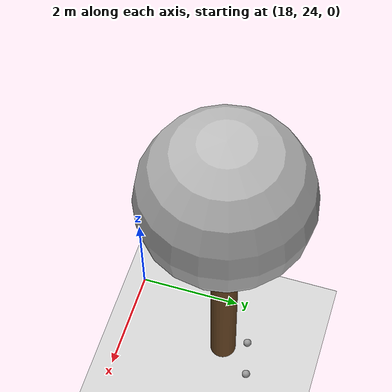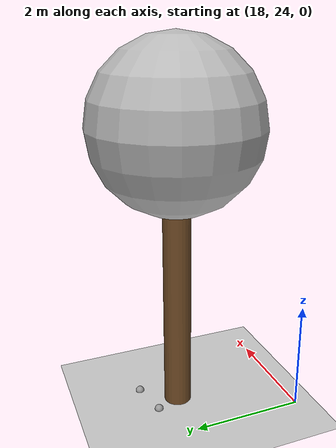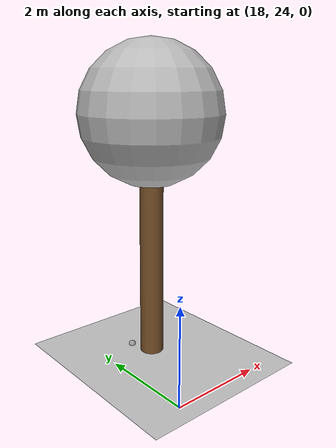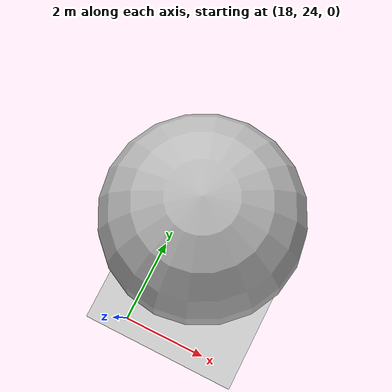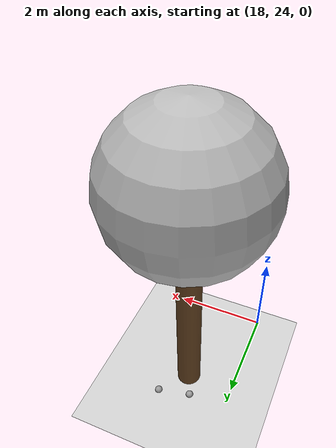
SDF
<sdf version="1.7">
 <world name="default">
  <model name="ground_plane">
   <static>1</static>
   <link name="link">
    <collision name="collision">
     <geometry><plane><normal>0 0 1</normal><size>100 100</size></plane></geometry>
     <surface>
      <contact><collide_bitmask>65535</collide_bitmask></contact>
      <friction><ode><mu>100</mu><mu2>50</mu2></ode></friction>
     </surface>
    </collision>
    <visual name="visual">
     <cast_shadows>0</cast_shadows>
     <geometry><plane><normal>0 0 1</normal><size>100 100</size></plane></geometry>
     <material>
      <script><uri>file://media/materials/scripts/gazebo.material</uri><name>Gazebo/Grey</name></script>
     </material>
    </visual>
   </link>
  </model>
  <model name="tree_simple_35">
   <static>1</static>
   <link name="link">
    <pose>0 0 0.1 0 -0 0</pose>
    <inertial>
     <mass>666</mass>
     <inertia>
      <ixx>0.0861167</ixx>
      <ixy>0</ixy>
      <ixz>0</ixz>
      <iyy>0.0861167</iyy>
      <iyz>0</iyz>
      <izz>0.0861167</izz>
     </inertia>
    </inertial>
    <collision name="collision_trunk">
     <pose>0 0 2 0 -0 0</pose>
     <geometry><cylinder><radius>0.25</radius><length>4</length></cylinder></geometry>
     <surface>
      <contact>
       <poissons_ratio>0.347</poissons_ratio>
       <elastic_modulus>8.8e+09</elastic_modulus>
       <ode><kp>100000</kp><kd>100</kd><max_vel>100</max_vel><min_depth>0.001</min_depth></ode>
      </contact>
      <friction>
       <torsional>
        <coefficient>1</coefficient>
        <use_patch_radius>0</use_patch_radius>
        <surface_radius>0.01</surface_radius>
       </torsional>
      </friction>
     </surface>
    </collision>
    <collision name="collision_treetop">
     <pose>0 0 5.2 0 -0 0</pose>
     <geometry><sphere><radius>1.5</radius></sphere></geometry>
     <surface>
      <contact>
       <poissons_ratio>0.347</poissons_ratio>
       <elastic_modulus>8.8e+09</elastic_modulus>
       <ode><kp>100000</kp><kd>100</kd><max_vel>100</max_vel><min_depth>0.001</min_depth></ode>
      </contact>
      <friction>
       <torsional>
        <coefficient>1</coefficient>
        <use_patch_radius>0</use_patch_radius>
        <surface_radius>0.01</surface_radius>
       </torsional>
      </friction>
     </surface>
    </collision>
    <visual name="trunk">
     <pose>0 0 2 0 -0 0</pose>
     <geometry><cylinder><radius>0.25</radius><length>4</length></cylinder></geometry>
     <material>
      <script>
       <uri>model://tree_simple/scripts</uri>
       <uri>model://tree_simple/materials/textures</uri>
       <name>TreeSimple/Trunk</name>
      </script>
     </material>
    </visual>
    <visual name="treetop">
     <pose>0 0 5.2 0 -0 0</pose>
     <geometry><sphere><radius>1.5</radius></sphere></geometry>
     <material>
      <script>
       <uri>model://tree_simple/scripts</uri>
       <uri>model://tree_simple/materials/textures</uri>
       <name>TreeSimple/Treetop</name>
      </script>
     </material>
    </visual>
   </link>
   <pose>19 26 -0.1 0 -0 0</pose>
  </model>
  <model name="seed_black_27">
   <link name="link">
    <inertial>
     <mass>1</mass>
     <inertia><ixx>0.1</ixx><ixy>0</ixy><ixz>0</ixz><iyy>0.1</iyy><iyz>0</iyz><izz>0.1</izz></inertia>
    </inertial>
    <visual name="visual">
     <geometry><sphere><radius>0.08</radius></sphere></geometry>
     <material>
      <script><name>Gazebo/Grey</name><uri>file://media/materials/scripts/gazebo.material</uri></script>
      <shader type="pixel"><normal_map>__default__</normal_map></shader>
      <ambient>0 0 0 1</ambient>
      <diffuse>0.7 0.7 0.7 1</diffuse>
      <specular>0.01 0.01 0.01 1</specular>
      <emissive>0 0 0 1</emissive>
     </material>
    </visual>
    <collision name="collision">
     <geometry><sphere><radius>0.0005</radius></sphere></geometry>
     <surface>
      <friction>
       <ode><mu>1</mu><mu2>1</mu2><fdir1>0 0 0</fdir1><slip1>0</slip1><slip2>0</slip2></ode>
       <torsional>
        <coefficient>1</coefficient>
        <patch_radius>0</patch_radius>
        <surface_radius>0</surface_radius>
        <use_patch_radius>1</use_patch_radius>
        <ode><slip>0</slip></ode>
       </torsional>
      </friction>
      <bounce><restitution_coefficient>0</restitution_coefficient><threshold>1e+06</threshold></bounce>
      <contact>
       <collide_without_contact>0</collide_without_contact>
       <collide_without_contact_bitmask>1</collide_without_contact_bitmask>
       <collide_bitmask>1</collide_bitmask>
       <ode>
        <soft_cfm>0</soft_cfm>
        <soft_erp>0.2</soft_erp>
        <kp>1e+13</kp>
        <kd>1</kd>
        <max_vel>0.01</max_vel>
        <min_depth>0</min_depth>
       </ode>
       <bullet>
        <split_impulse>1</split_impulse>
        <split_impulse_penetration_threshold>-0.01</split_impulse_penetration_threshold>
        <soft_cfm>0</soft_cfm>
        <soft_erp>0.2</soft_erp>
        <kp>1e+13</kp>
        <kd>1</kd>
       </bullet>
      </contact>
     </surface>
    </collision>
   </link>
   <static>0</static>
   <pose>18.7976 26.4507 0.0005 0 -0 0</pose>
  </model>
  <model name="seed_black_30">
   <link name="link">
    <inertial>
     <mass>1</mass>
     <inertia><ixx>0.1</ixx><ixy>0</ixy><ixz>0</ixz><iyy>0.1</iyy><iyz>0</iyz><izz>0.1</izz></inertia>
    </inertial>
    <visual name="visual">
     <geometry><sphere><radius>0.08</radius></sphere></geometry>
     <material>
      <script><name>Gazebo/Grey</name><uri>file://media/materials/scripts/gazebo.material</uri></script>
      <shader type="pixel"><normal_map>__default__</normal_map></shader>
      <ambient>0 0 0 1</ambient>
      <diffuse>0.7 0.7 0.7 1</diffuse>
      <specular>0.01 0.01 0.01 1</specular>
      <emissive>0 0 0 1</emissive>
     </material>
    </visual>
    <collision name="collision">
     <geometry><sphere><radius>0.0005</radius></sphere></geometry>
     <surface>
      <friction>
       <ode><mu>1</mu><mu2>1</mu2><fdir1>0 0 0</fdir1><slip1>0</slip1><slip2>0</slip2></ode>
       <torsional>
        <coefficient>1</coefficient>
        <patch_radius>0</patch_radius>
        <surface_radius>0</surface_radius>
        <use_patch_radius>1</use_patch_radius>
        <ode><slip>0</slip></ode>
       </torsional>
      </friction>
      <bounce><restitution_coefficient>0</restitution_coefficient><threshold>1e+06</threshold></bounce>
      <contact>
       <collide_without_contact>0</collide_without_contact>
       <collide_without_contact_bitmask>1</collide_without_contact_bitmask>
       <collide_bitmask>1</collide_bitmask>
       <ode>
        <soft_cfm>0</soft_cfm>
        <soft_erp>0.2</soft_erp>
        <kp>1e+13</kp>
        <kd>1</kd>
        <max_vel>0.01</max_vel>
        <min_depth>0</min_depth>
       </ode>
       <bullet>
        <split_impulse>1</split_impulse>
        <split_impulse_penetration_threshold>-0.01</split_impulse_penetration_threshold>
        <soft_cfm>0</soft_cfm>
        <soft_erp>0.2</soft_erp>
        <kp>1e+13</kp>
        <kd>1</kd>
       </bullet>
      </contact>
     </surface>
    </collision>
   </link>
   <static>0</static>
   <pose>19.4647 26.6109 0.0005 0 -0 0</pose>
  </model>
 </world>
</sdf>
